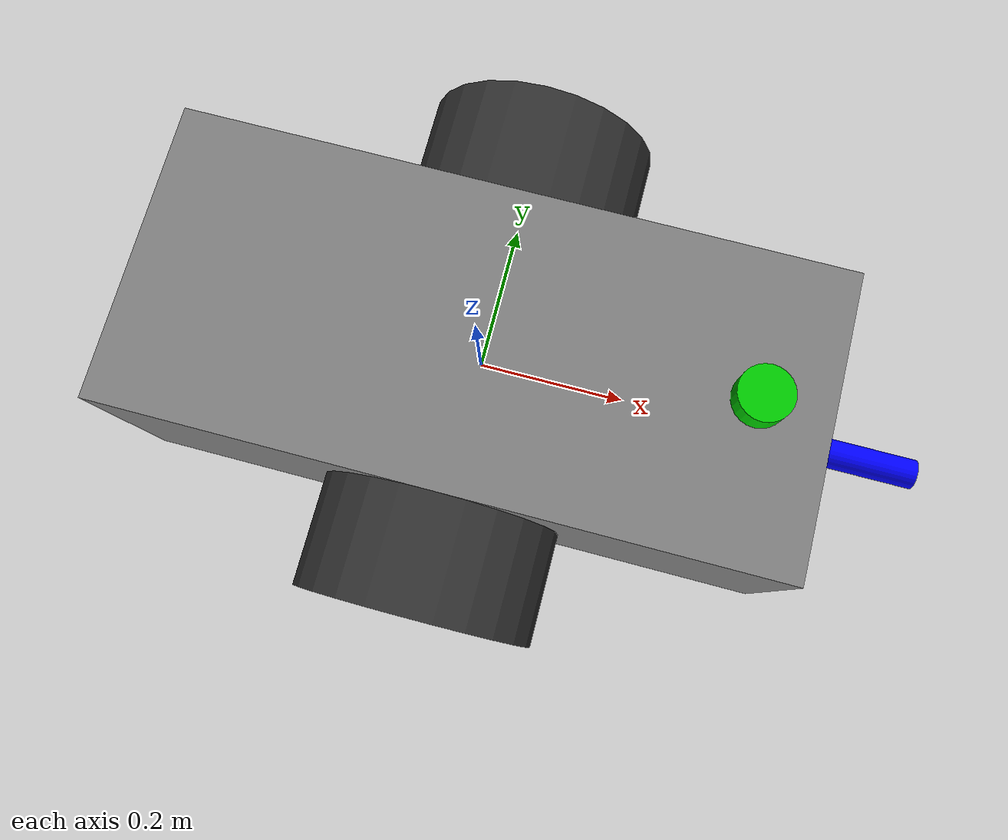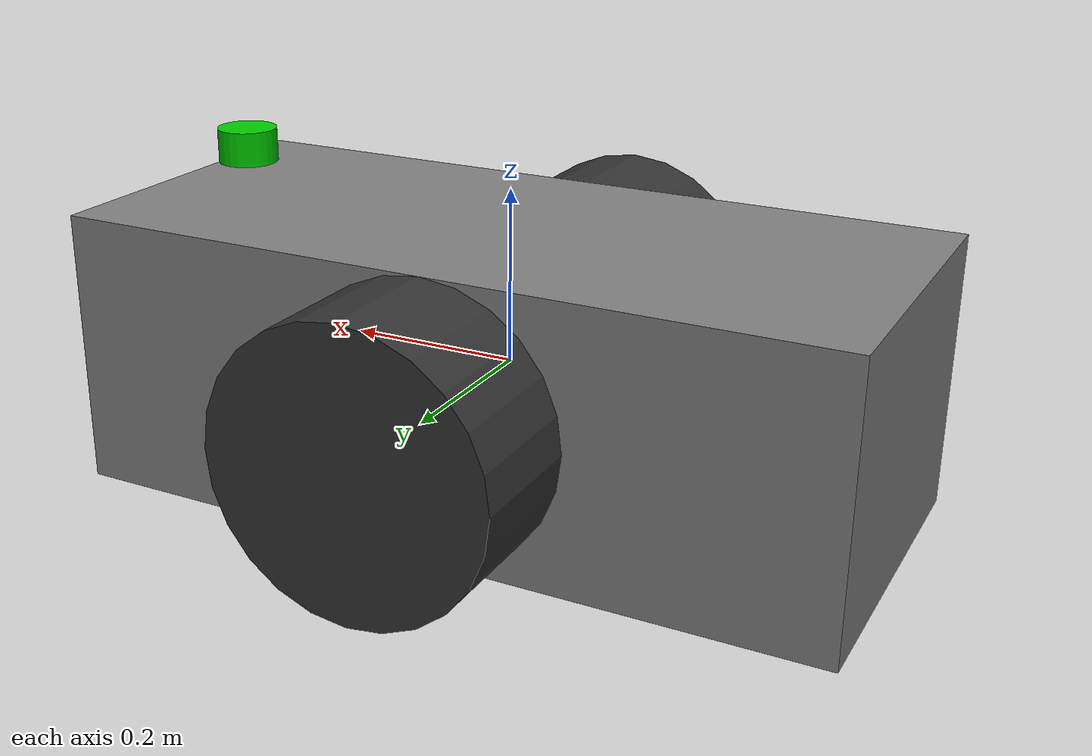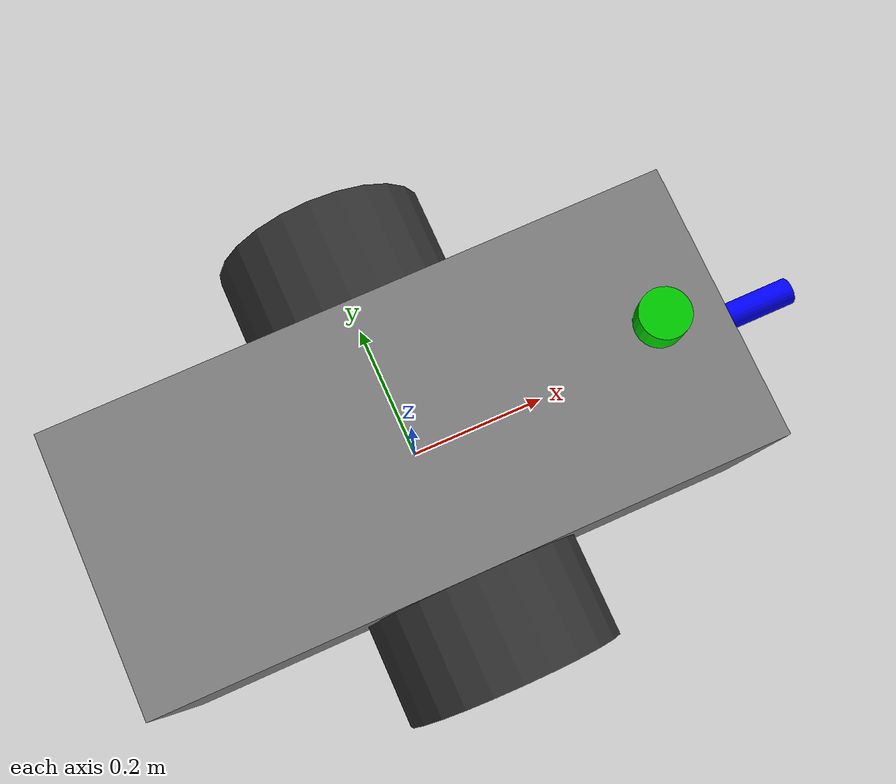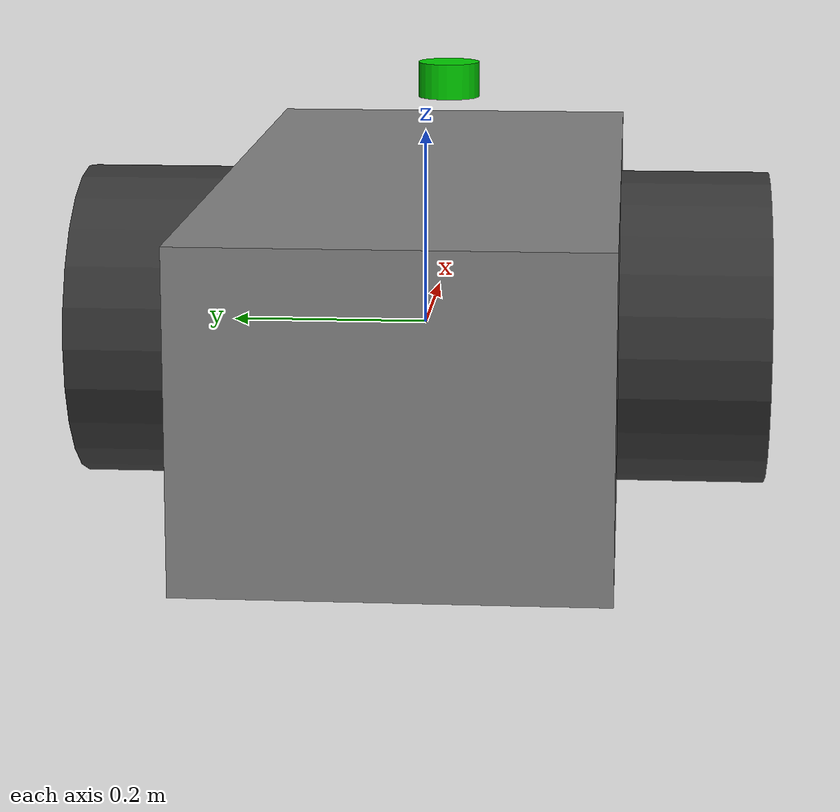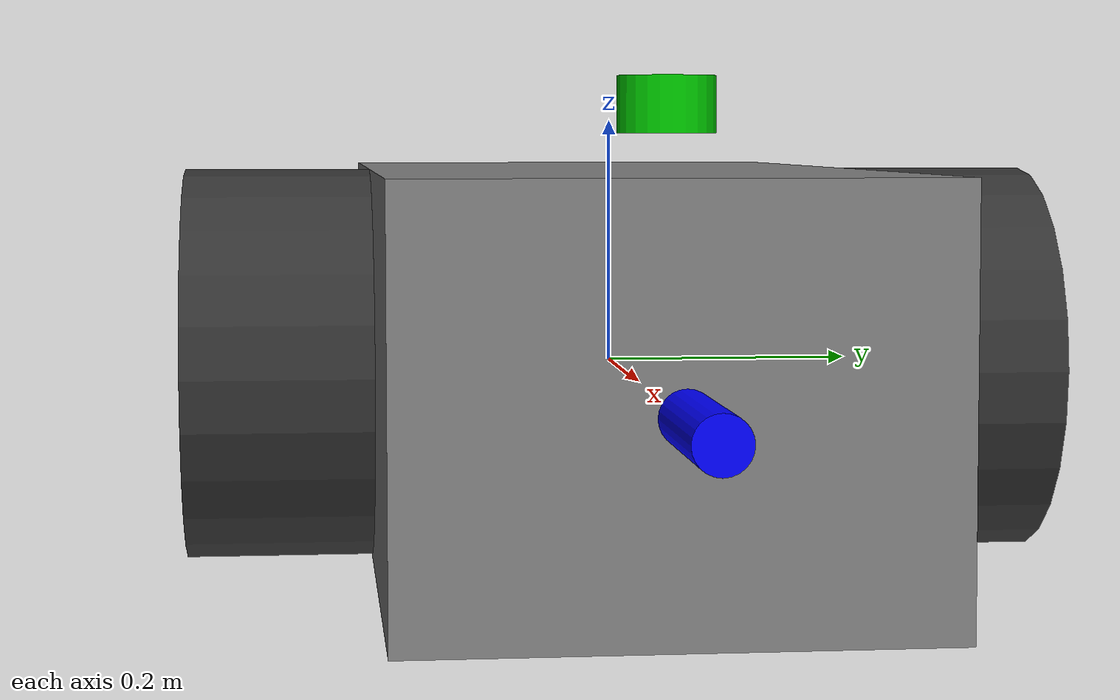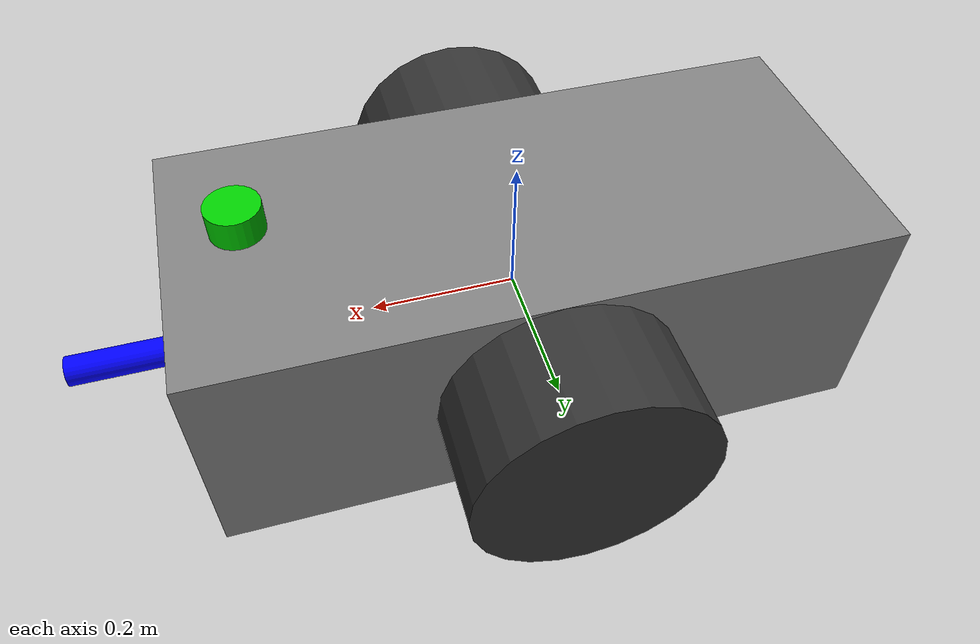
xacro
<?xml version="1.0"?>
<robot name="bunker_mini" xmlns:xacro="http://ros.org/wiki/xacro">
  <!--
    车身尺寸: 90cm x 40cm x 32cm (长x宽x高)
    总宽: 74cm
    轮距: 40cm (车身宽度)
    轮宽: 15cm
  -->

  <xacro:property name="chassis_length" value="0.90" />
  <xacro:property name="chassis_width" value="0.40" />
  <xacro:property name="chassis_height" value="0.32" />
  <xacro:property name="wheel_width" value="0.15" />
  <xacro:property name="wheel_radius" value="0.16" />
  <xacro:property name="wheel_y_offset" value="0.275" />

  <material name="grey">
    <color rgba="0.5 0.5 0.5 1.0"/>
  </material>

  <material name="dark_grey">
    <color rgba="0.2 0.2 0.2 1.0"/>
  </material>

  <material name="green">
    <color rgba="0.0 0.8 0.0 1.0"/>
  </material>

  <!-- Base link - 车身 (作为根) -->
  <link name="base_link">
    <visual>
      <origin xyz="0 0 0" rpy="0 0 0"/>
      <geometry>
        <box size="${chassis_length} ${chassis_width} ${chassis_height}"/>
      </geometry>
      <material name="grey"/>
    </visual>
    <collision>
      <origin xyz="0 0 0" rpy="0 0 0"/>
      <geometry>
        <box size="${chassis_length} ${chassis_width} ${chassis_height}"/>
      </geometry>
    </collision>
    <inertial>
      <origin xyz="0 0 0" rpy="0 0 0"/>
      <mass value="50.0"/>
      <inertia ixx="1.0" ixy="0" ixz="0" iyy="1.0" iyz="0" izz="1.0"/>
    </inertial>
  </link>

  <!-- 左轮 -->
  <link name="left_wheel_link">
    <visual>
      <origin xyz="0 0 0" rpy="1.5708 0 0"/>
      <geometry>
        <cylinder radius="${wheel_radius}" length="${wheel_width}"/>
      </geometry>
      <material name="dark_grey"/>
    </visual>
    <collision>
      <origin xyz="0 0 0" rpy="1.5708 0 0"/>
      <geometry>
        <cylinder radius="${wheel_radius}" length="${wheel_width}"/>
      </geometry>
    </collision>
    <inertial>
      <origin xyz="0 0 0" rpy="0 0 0"/>
      <mass value="5.0"/>
      <inertia ixx="0.1" ixy="0" ixz="0" iyy="0.1" iyz="0" izz="0.1"/>
    </inertial>
  </link>

  <joint name="left_wheel_joint" type="continuous">
    <parent link="base_link"/>
    <child link="left_wheel_link"/>
    <origin xyz="0 ${wheel_y_offset} 0" rpy="0 0 0"/>
    <axis xyz="0 1 0"/>
  </joint>

  <!-- 右轮 -->
  <link name="right_wheel_link">
    <visual>
      <origin xyz="0 0 0" rpy="1.5708 0 0"/>
      <geometry>
        <cylinder radius="${wheel_radius}" length="${wheel_width}"/>
      </geometry>
      <material name="dark_grey"/>
    </visual>
    <collision>
      <origin xyz="0 0 0" rpy="1.5708 0 0"/>
      <geometry>
        <cylinder radius="${wheel_radius}" length="${wheel_width}"/>
      </geometry>
    </collision>
    <inertial>
      <origin xyz="0 0 0" rpy="0 0 0"/>
      <mass value="5.0"/>
      <inertia ixx="0.1" ixy="0" ixz="0" iyy="0.1" iyz="0" izz="0.1"/>
    </inertial>
  </link>

  <joint name="right_wheel_joint" type="continuous">
    <parent link="base_link"/>
    <child link="right_wheel_link"/>
    <origin xyz="0 -${wheel_y_offset} 0" rpy="0 0 0"/>
    <axis xyz="0 1 0"/>
  </joint>

  <!-- 激光雷达 -->
  <link name="laser">
    <visual>
      <origin xyz="0 0 0" rpy="0 0 0"/>
      <geometry>
        <cylinder radius="0.035" length="0.04"/>
      </geometry>
      <material name="green"/>
    </visual>
    <collision>
      <geometry>
        <cylinder radius="0.035" length="0.04"/>
      </geometry>
    </collision>
  </link>

  <joint name="laser_joint" type="fixed">
    <parent link="base_link"/>
    <child link="laser"/>
    <origin xyz="0.35 0 ${chassis_height/2 + 0.05}" rpy="0 0 0"/>
  </joint>

  <!-- IMU -->
  <link name="imu_link"/>

  <joint name="imu_joint" type="fixed">
    <parent link="base_link"/>
    <child link="imu_link"/>
    <origin xyz="0 0 0" rpy="0 0 0"/>
  </joint>

  <!-- 前方向标记 (蓝色箭头) -->
  <link name="front_marker">
    <visual>
      <origin xyz="0 0 0" rpy="0 1.5708 0"/>
      <geometry>
        <cylinder radius="0.02" length="0.15"/>
      </geometry>
      <material name="blue">
        <color rgba="0.0 0.0 1.0 1.0"/>
      </material>
    </visual>
  </link>

  <joint name="front_marker_joint" type="fixed">
    <parent link="base_link"/>
    <child link="front_marker"/>
    <origin xyz="${chassis_length/2 + 0.08} 0 0" rpy="0 0 0"/>
  </joint>

</robot>
